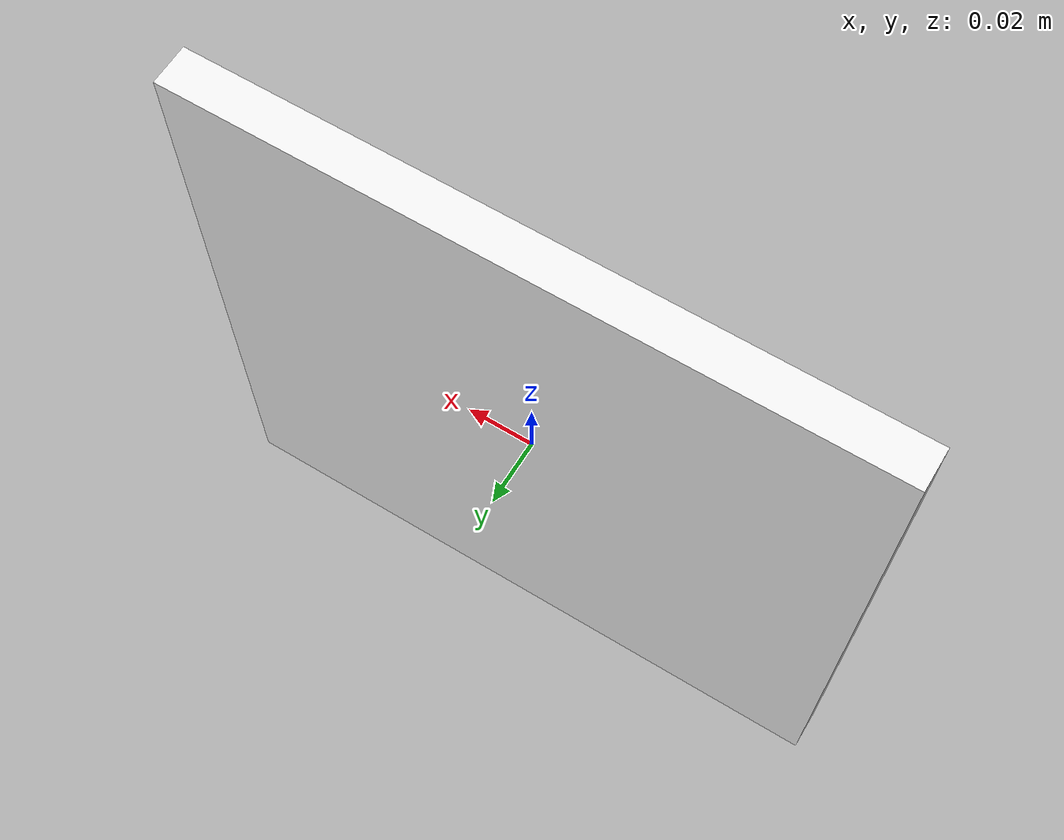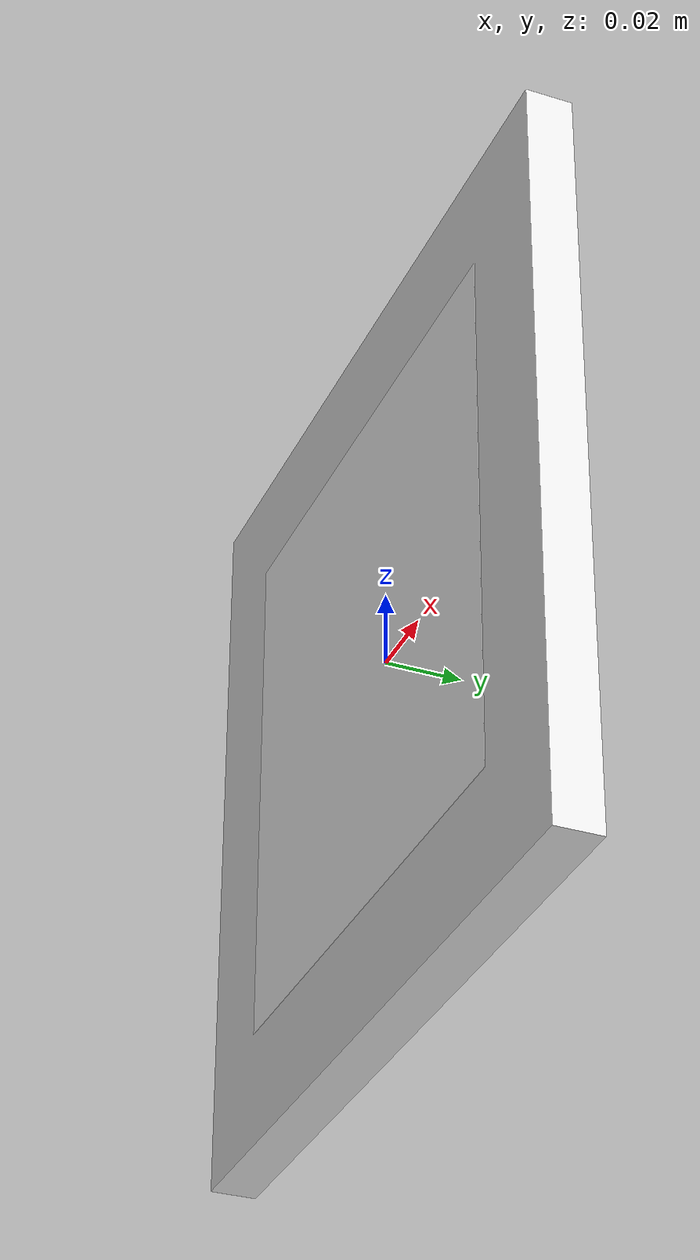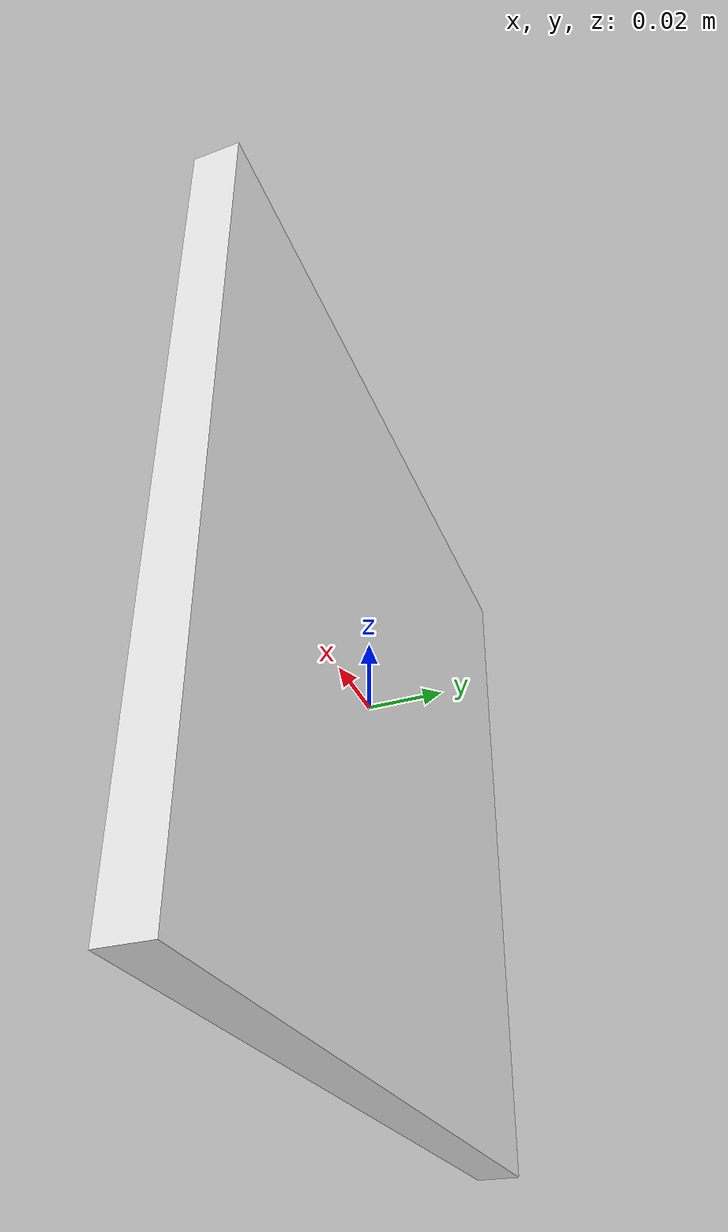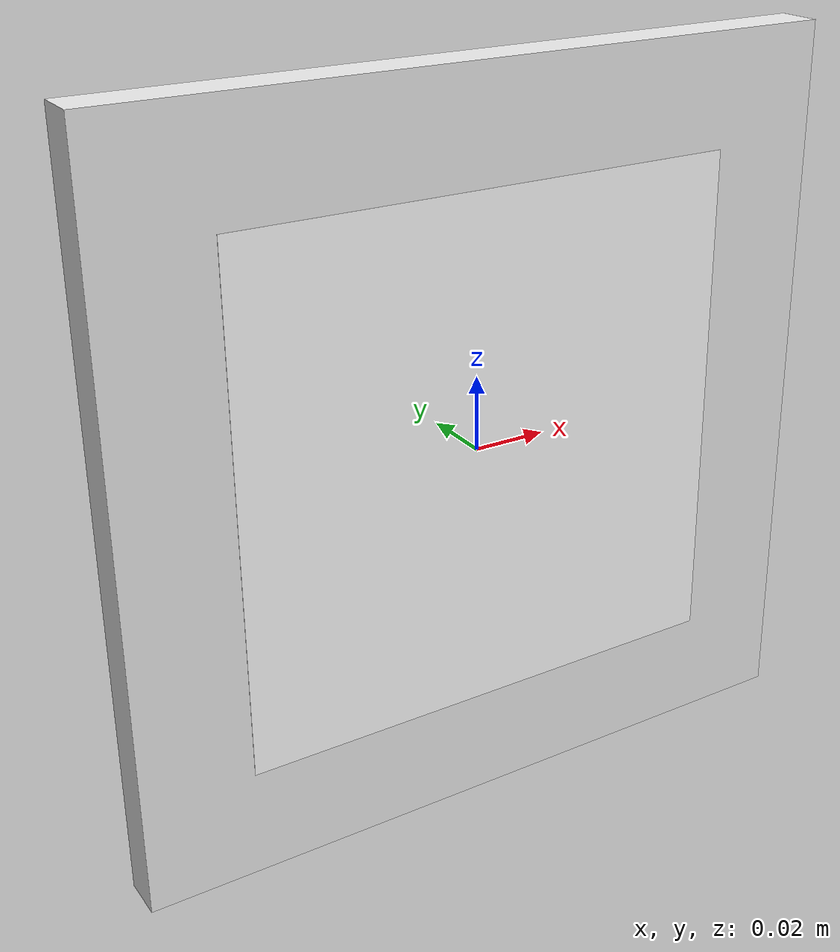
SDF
<?xml version="1.0"?>
<sdf version="1.6">
  <model name="aruco_calibration_board">
    <static>true</static>
    <link name="board_link">
      <collision name="board_collision">
        <pose>0 0 0 0 0 0</pose>
        <geometry><box><size>0.20 0.012 0.20</size></box></geometry>
      </collision>
      <visual name="board_visual">
        <geometry><box><size>0.20 0.012 0.20</size></box></geometry>
        <material>
          <ambient>0.92 0.92 0.92 1</ambient>
          <diffuse>0.92 0.92 0.92 1</diffuse>
        </material>
      </visual>
      <visual name="aruco_visual">
        <pose>0 -0.0065 0 1.5707963 0 0</pose>
        <geometry><plane><normal>0 0 1</normal><size>0.14 0.14</size></plane></geometry>
        <material>
          <ambient>1 1 1 1</ambient>
          <diffuse>1 1 1 1</diffuse>
          <pbr>
            <metal>
              <albedo_map>model://aruco_calibration_board/materials/textures/aruco_4x4_50_id0.png</albedo_map>
            </metal>
          </pbr>
        </material>
      </visual>
    </link>
  </model>
</sdf>
